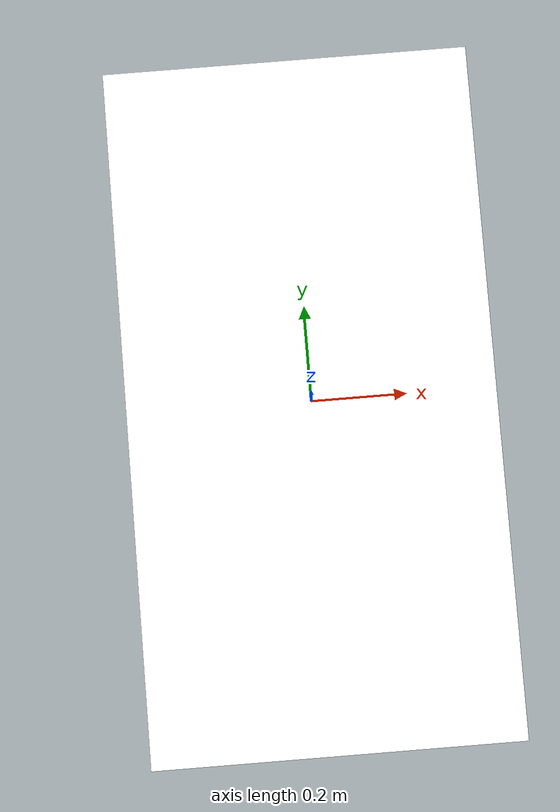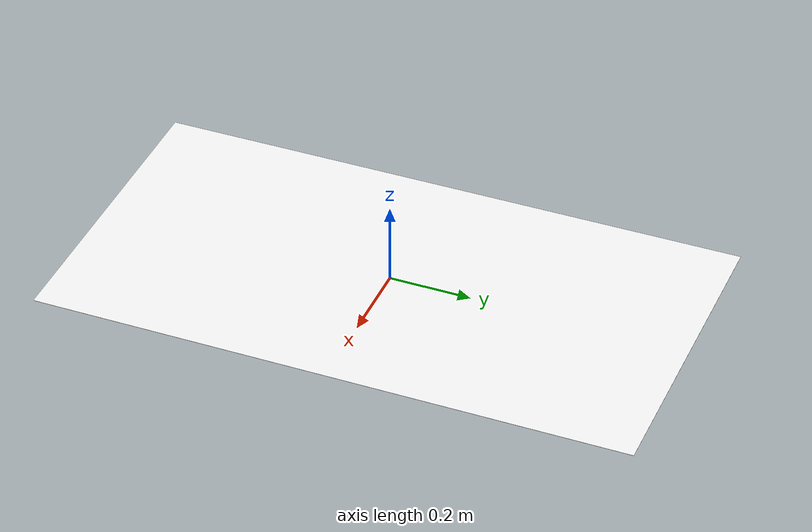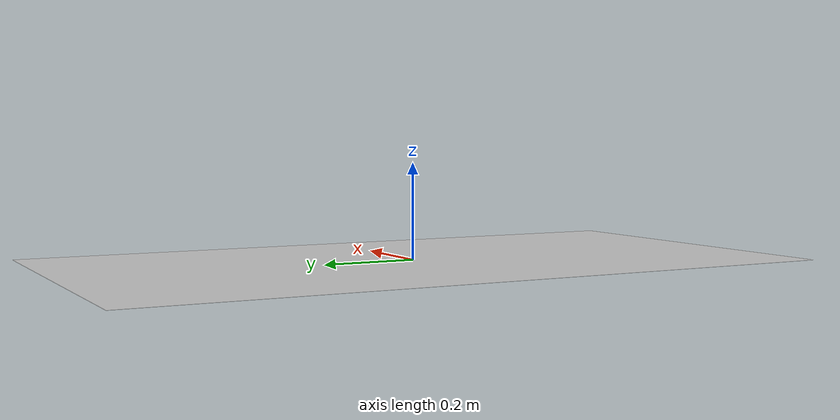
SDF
<?xml version='1.0'?>
<sdf version='1.6'>
  <model name='race_track13'>
    <static>true</static>
    <link name='link'>
      <visual name='visual'>
        <geometry>
          <box>
            <size>0.774 1.462 0.000553</size>
          </box>
        </geometry>
        <material>
          <script>
            <name>RaceTrack13/track13</name>
	    <uri>model://racetrack13/materials/scripts</uri>
            <uri>model://racetrack13/materials/textures</uri>
          </script>
          <ambient>1 1 1 1</ambient>
          <diffuse>1 1 1 1</diffuse>
          <specular>0.01 0.01 0.01 1</specular>
          <emissive>1 1 1 1</emissive>
        </material>
        <transparency>0</transparency>
      </visual>
      <collision name='collision'>
        <geometry>
          <box>
            <size>0.774 1.462 0.000553</size>
          </box>
        </geometry>
	<surface>
          <friction>
            <ode>
              <mu>100</mu>
              <mu2>50</mu2>
            </ode>
          </friction>
        </surface>
      </collision>
    </link>
  </model>
</sdf>
